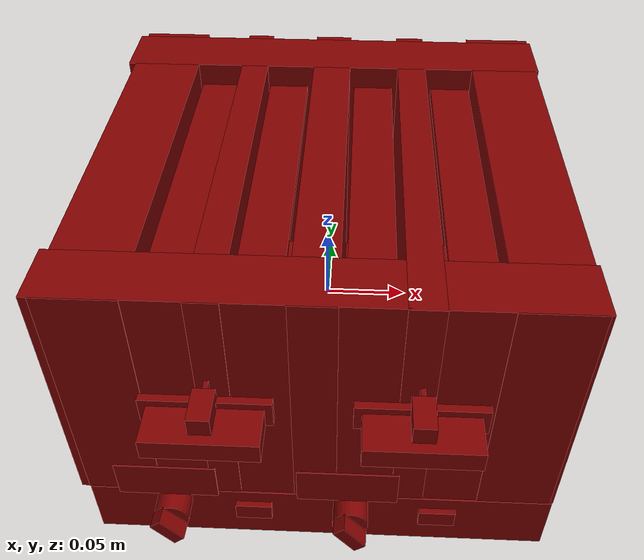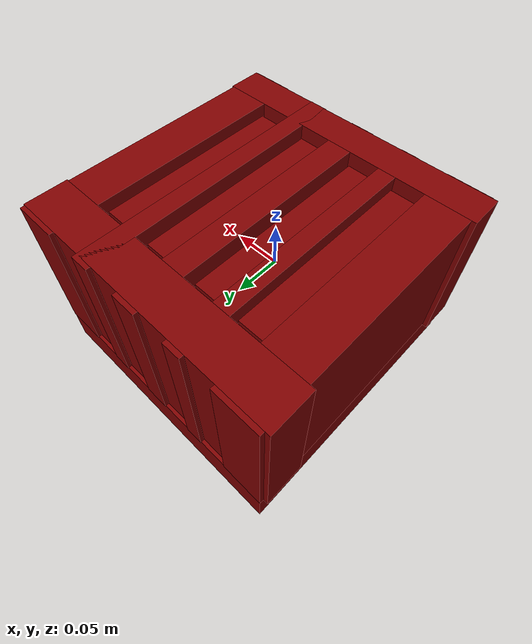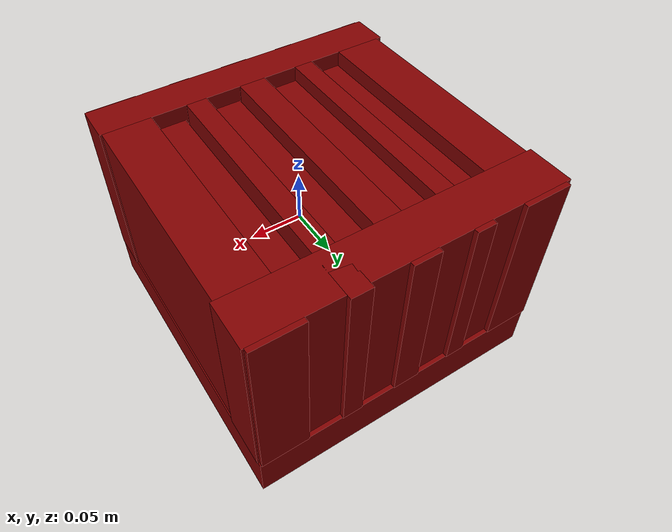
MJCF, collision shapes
<?xml version='1.0' encoding='UTF-8'?>
<mujoco model="model">
  <option timestep="0.0005" gravity="0.0 0.0 -9.81"/>
  <compiler angle="radian"/>
  <asset>
    <mesh file="visuals/Body001.obj" name="Body001_vis"/>
    <mesh file="visuals/Body001_Clear.obj" name="Body001_Clear_vis"/>
    <mesh file="visuals/Body002.obj" name="Body002_vis"/>
    <mesh file="visuals/Button001.obj" name="Button001_vis"/>
    <mesh file="visuals/Button002.obj" name="Button002_vis"/>
    <mesh file="visuals/Knob001.obj" name="Knob001_vis"/>
    <mesh file="visuals/Knob002.obj" name="Knob002_vis"/>
    <mesh file="visuals/Lever001.obj" name="Lever001_vis"/>
    <mesh file="visuals/Lever002.obj" name="Lever002_vis"/>
    <texture file="visuals/T_BC001.png" name="Body001_material" type="2d"/>
    <material name="Body001_material" rgba="1 1 1 1.0" texture="Body001_material" shininess="0.5" specular="0.7"/>
    <texture file="visuals/T_BC001.png" name="Body001_Clear_material" type="2d"/>
    <material name="Body001_Clear_material" rgba="1 1 1 0.699999988079071" texture="Body001_Clear_material" shininess="0.5" specular="0.7"/>
    <texture file="visuals/T_BC001.png" name="Body002_material" type="2d"/>
    <material name="Body002_material" rgba="1 1 1 1.0" texture="Body002_material" shininess="0.5" specular="8"/>
    <texture file="visuals/T_BC001.png" name="Button001_material" type="2d"/>
    <material name="Button001_material" rgba="1 1 1 1.0" texture="Button001_material" shininess="0.5" specular="0.7"/>
    <texture file="visuals/T_BC001.png" name="Button002_material" type="2d"/>
    <material name="Button002_material" rgba="1 1 1 1.0" texture="Button002_material" shininess="0.5" specular="0.7"/>
    <texture file="visuals/T_BC001.png" name="Knob001_material" type="2d"/>
    <material name="Knob001_material" rgba="1 1 1 1.0" texture="Knob001_material" shininess="0.5" specular="0.7"/>
    <texture file="visuals/T_BC001.png" name="Knob002_material" type="2d"/>
    <material name="Knob002_material" rgba="1 1 1 1.0" texture="Knob002_material" shininess="0.5" specular="0.7"/>
    <texture file="visuals/T_BC001.png" name="Lever001_material" type="2d"/>
    <material name="Lever001_material" rgba="1 1 1 1.0" texture="Lever001_material" shininess="0.5" specular="0.7"/>
    <texture file="visuals/T_BC001.png" name="Lever002_material" type="2d"/>
    <material name="Lever002_material" rgba="1 1 1 1.0" texture="Lever002_material" shininess="0.5" specular="0.7"/>
  </asset>
  <default>
    <default class="visual">
      <geom conaffinity="0" contype="0" group="1" type="mesh"/>
    </default>
    <default class="collision">
      <geom group="0" rgba="0.5 0 0 0.5"/>
    </default>
    <default class="spawn">
      <geom group="0" rgba="1 1 1 0.5" contype="0" conaffinity="0"/>
      <site group="0" rgba="1 1 1 0.5"/>
    </default>
    <default class="region">
      <geom group="1" conaffinity="0" contype="0" rgba="0 1 0 0"/>
    </default>
  </default>
  <worldbody>
    <body>
      <body name="object">
        <geom mesh="Body001_vis" type="mesh" solimp="0.998 0.998 0.001" solref="0.001 1" friction="0.95 0.3 0.1" class="visual" material="Body001_material"/>
        <geom class="collision" type="box" pos="0.0 0.02383670210838318 -0.07956255972385406" size="0.1396121233701706 0.1427888572216034 0.021233486011624336" quat="1.0 0.0 0.0 0.0" density="1000.0"/>
        <geom class="collision" type="box" pos="-0.002511797472834587 0.024484198540449142 0.020840924233198166" size="0.012622779235243797 0.14278756082057953 0.07956822961568832" quat="1.0 0.0 0.0 0.0" density="1000.0"/>
        <geom class="collision" type="box" pos="-0.05631228908896446 0.024484198540449142 0.020840924233198166" size="0.009034966118633747 0.1427888572216034 0.07956815510988235" quat="1.0 0.0 0.0 0.0" density="1000.0"/>
        <geom class="collision" type="box" pos="0.05267892777919769 0.024484198540449142 0.020840924233198166" size="0.009521727450191975 0.1427888572216034 0.07956849783658981" quat="1.0 0.0 0.0 0.0" density="1000.0"/>
        <geom class="collision" type="box" pos="0.1164533868432045 0.024484198540449142 0.020840924233198166" size="0.021915441378951073 0.1427888572216034 0.07956811785697937" quat="1.0 0.0 0.0 0.0" density="1000.0"/>
        <geom class="collision" type="box" pos="-0.1181488037109375 0.024484198540449142 0.020840924233198166" size="0.02236456237733364 0.1427888572216034 0.07956814020872116" quat="1.0 0.0 0.0 0.0" density="1000.0"/>
        <geom class="collision" type="box" pos="-0.0024718253407627344 0.14158692955970764 0.020840924233198166" size="0.14278815686702728 0.02127535082399845 0.07956849783658981" quat="1.0 0.0 0.0 0.0" density="1000.0"/>
        <geom class="collision" type="box" pos="-0.0024718253407627344 -0.09994810074567795 0.020840924233198166" size="0.1427888721227646 0.017911167815327644 0.07956849783658981" quat="1.0 0.0 0.0 0.0" density="1000.0"/>
        <body name="Body001_Clear">
          <geom mesh="Body001_Clear_vis" type="mesh" solimp="0.998 0.998 0.001" solref="0.001 1" friction="0.95 0.3 0.1" class="visual" material="Body001_Clear_material"/>
          <geom class="collision" type="box" pos="-0.08873660862445831 -0.12673139572143555 -0.03657145798206329" size="0.02941889874637127 0.0005183819448575377 0.013261654414236546" quat="1.0 0.0 0.0 0.0" density="1000.0"/>
          <geom class="collision" type="box" pos="0.016700049862265587 -0.12673139572143555 -0.03657145798206329" size="0.02941889874637127 0.0005183819448575377 0.013261654414236546" quat="1.0 0.0 0.0 0.0" density="1000.0"/>
        </body>
        <body name="Body002">
          <geom mesh="Body002_vis" type="mesh" solimp="0.998 0.998 0.001" solref="0.001 1" friction="0.95 0.3 0.1" class="visual" material="Body002_material"/>
        </body>
        <body name="Button001">
          <joint axis="0.0 1.0 0.0" pos="-0.038676097989082336 -0.1279504895210266 -0.061730995774269104" limited="true" name="Button001_joint" range="0.0 0.002" type="slide" damping="1" frictionloss="1" armature=".01" stiffness="0.05"/>
          <geom mesh="Button001_vis" type="mesh" solimp="0.998 0.998 0.001" solref="0.001 1" friction="0.95 0.3 0.1" class="visual" material="Button001_material"/>
          <geom class="collision" type="box" pos="-0.03865706920623779 -0.1282956600189209 -0.06188366562128067" size="0.010698146186769009 0.0017508299788460135 0.0060849785804748535" quat="1.0 0.0 0.0 0.0" density="1000.0"/>
        </body>
        <body name="Button002">
          <joint axis="0.0 1.0 0.0" pos="0.07016493380069733 -0.1279504895210266 -0.061730995774269104" limited="true" name="Button002_joint" range="0.0 0.002" type="slide" damping="1" frictionloss="1" armature=".01" stiffness="0.05"/>
          <geom mesh="Button002_vis" type="mesh" solimp="0.998 0.998 0.001" solref="0.001 1" friction="0.95 0.3 0.1" class="visual" material="Button002_material"/>
          <geom class="collision" type="box" pos="0.07016493380069733 -0.1282956600189209 -0.06188366562128067" size="0.010698146186769009 0.0017508299788460135 0.0060849785804748535" quat="1.0 0.0 0.0 0.0" density="1000.0"/>
        </body>
        <body name="Knob001">
          <joint axis="9.010931023567537e-08 1.0 3.4696352457785906e-08" pos="-0.0881413146853447 -0.13498832285404205 -0.06467341631650925" limited="true" name="Knob001_joint" range="0.0 1.3613568165555772" type="hinge" damping="0.05" armature="0.001"/>
          <geom mesh="Knob001_vis" type="mesh" solimp="0.998 0.998 0.001" solref="0.001 1" friction="0.95 0.3 0.1" class="visual" material="Knob001_material"/>
          <geom class="collision" type="cylinder" pos="-0.08803896605968475 -0.12728014588356018 -0.06447699666023254" size="0.0105937160551548 0.007022842299193144" quat="0.7071067094802856 0.70710688829422 -1.5700925641616852e-16 1.2790027470567158e-23" density="1000.0"/>
          <geom class="collision" type="box" pos="-0.08849649131298065 -0.13935637474060059 -0.0644083321094513" size="0.009871277026832104 0.0052429018542170525 0.0041764602065086365" quat="0.913242757320404 -0.012167119421064854 0.4063149094581604 -0.027347063645720482" density="1000.0"/>
        </body>
        <body name="Knob002">
          <joint axis="9.010931023567537e-08 1.0 3.4696352457785906e-08" pos="0.019079558551311493 -0.13498832285404205 -0.06467341631650925" limited="true" name="Knob002_joint" range="0.0 1.3613568165555772" type="hinge" damping="0.05" armature="0.001"/>
          <geom mesh="Knob002_vis" type="mesh" solimp="0.998 0.998 0.001" solref="0.001 1" friction="0.95 0.3 0.1" class="visual" material="Knob002_material"/>
          <geom class="collision" type="cylinder" pos="0.019075173884630203 -0.12729212641716003 -0.06447699666023254" size="0.0105937160551548 0.007022842299193144" quat="0.7071067094802856 0.70710688829422 -1.5700925641616852e-16 1.2790027470567158e-23" density="1000.0"/>
          <geom class="collision" type="box" pos="0.01896749809384346 -0.1394963562488556 -0.06417219340801239" size="0.010065554641187191 0.00524289533495903 0.004181316588073969" quat="0.904408872127533 -0.012745060957968235 0.4256156384944916 -0.02708256058394909" density="1000.0"/>
        </body>
        <body name="Lever001">
          <joint axis="0.0 0.0 -1.0" pos="-0.05561074614524841 -0.11231432855129242 0.047188472002744675" limited="true" name="Lever001_joint" range="0.0 0.062" type="slide" damping="1" frictionloss="1" armature=".01" stiffness="1" springref="-2"/>
          <geom mesh="Lever001_vis" type="mesh" solimp="0.998 0.998 0.001" solref="0.001 1" friction="0.95 0.3 0.1" class="visual" material="Lever001_material"/>
          <geom class="collision" type="box" pos="-0.05582137405872345 -0.14965349435806274 0.042099479585886" size="0.029944511130452156 0.012194793671369553 0.006245047319680452" quat="1.0 0.0 0.0 0.0" name="sideL_lever_knob" density="1000.0"/>
          <geom class="collision" type="box" pos="-0.05582137405872345 -0.1374954879283905 0.044318266212940216" size="0.03413298353552818 0.0022110927384346724 0.008191992528736591" quat="1.0 0.0 0.0 0.0" density="1000.0"/>
          <geom class="collision" type="box" pos="-0.05582137405872345 -0.14618918299674988 0.05301307141780853" size="0.00586021738126874 0.010034876875579357 0.006292618345469236" quat="1.0 0.0 0.0 0.0" density="1000.0"/>
          <geom class="collision" type="box" pos="-0.05582137778401375 -0.13273417949676514 0.048948291689157486" size="0.0011697284644469619 0.003333111060783267 0.008165786974132061" quat="1.0 0.0 0.0 0.0" density="1000.0"/>
          <geom class="collision" type="box" pos="-0.07968541234731674 0.017848428338766098 0.08605487644672394" size="0.012999999336898327 0.09567824751138687 0.0028953137807548046" quat="1.0 0.0 0.0 0.0" name="sideL_slotL_floor" density="1000.0"/>
          <geom class="collision" type="box" pos="-0.03226739913225174 0.017848428338766098 0.08605487644672394" size="0.012999999336898327 0.09567819535732269 0.0028953133150935173" quat="1.0 0.0 0.0 0.0" name="sideL_slotR_floor" density="1000.0"/>
        </body>
        <body name="Lever002">
          <joint axis="0.0 0.0 -1.0" pos="0.05279482901096344 -0.11247250437736511 0.04718848690390587" limited="true" name="Lever002_joint" range="0.0 0.062" type="slide" damping="1" frictionloss="1" armature=".01" stiffness="1" springref="-2"/>
          <geom mesh="Lever002_vis" type="mesh" solimp="0.998 0.998 0.001" solref="0.001 1" friction="0.95 0.3 0.1" class="visual" material="Lever002_material"/>
          <geom class="collision" type="box" pos="0.05283983051776886 -0.14965349435806274 0.042099479585886" size="0.029944417998194695 0.012194799259305 0.0062450505793094635" quat="1.0 0.0 0.0 0.0" name="sideR_lever_knob" density="1000.0"/>
          <geom class="collision" type="box" pos="0.05283983051776886 -0.1374954879283905 0.044318266212940216" size="0.034132860600948334 0.0022110939025878906 0.008192007429897785" quat="1.0 0.0 0.0 0.0" density="1000.0"/>
          <geom class="collision" type="box" pos="0.05283983051776886 -0.14618918299674988 0.05301307141780853" size="0.00586021738126874 0.010034831240773201 0.006292618345469236" quat="1.0 0.0 0.0 0.0" density="1000.0"/>
          <geom class="collision" type="box" pos="0.05283983051776886 -0.13273417949676514 0.048948291689157486" size="0.0011697284644469619 0.003108852542936802 0.008165727369487286" quat="1.0 0.0 0.0 0.0" density="1000.0"/>
          <geom class="collision" type="box" pos="0.026323795318603516 0.017848428338766098 0.08605487644672394" size="0.012999999336898327 0.09567790478467941 0.0028953116852790117" quat="1.0 0.0 0.0 0.0" name="sideR_slotL_floor" density="1000.0"/>
          <geom class="collision" type="box" pos="0.07960101217031479 0.017848428338766098 0.08605487644672394" size="0.012999999336898327 0.09567785263061523 0.0028953112196177244" quat="1.0 0.0 0.0 0.0" name="sideR_slotR_floor" density="1000.0"/>
        </body>
        <geom class="region" name="reg_main" type="box" pos="0.0 0.01704566180706024 0.0" size="0.1402430683374405 0.14466173946857452 0.10115334391593933"/>
      </body>
    </body>
  </worldbody>
  <actuator>
    <motor name="Button001_joint_actuator" joint="Button001_joint" gear="0.1"/>
    <motor name="Button002_joint_actuator" joint="Button002_joint" gear="0.1"/>
    <motor name="Knob001_joint_actuator" joint="Knob001_joint" gear="5"/>
    <motor name="Knob002_joint_actuator" joint="Knob002_joint" gear="5"/>
    <motor name="Lever001_joint_actuator" joint="Lever001_joint" gear="2"/>
    <motor name="Lever002_joint_actuator" joint="Lever002_joint" gear="2"/>
  </actuator>
</mujoco>
